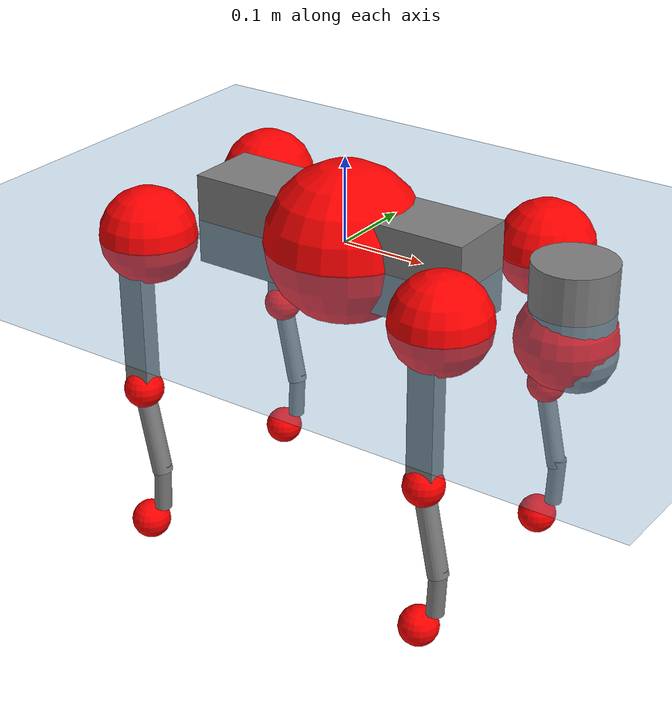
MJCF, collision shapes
<mujoco model="go2">
  <compiler angle="radian" assetdir="assets" balanceinertia="true" inertiafromgeom="false"/>

  <option timestep="0.005" density="1.2" viscosity="2e-05"/>

  <size nkey="1"/>

  <visual>
    <quality shadowsize="8192"/>
    <map shadowclip="0.5"/>
  </visual>

  <default>
    <default class="/">
      <geom contype="0" conaffinity="0" group="1" solref="-1000 -80"/>
      <site size="0.01 0.005 0.005" group="5"/>
      <general forcelimited="true" biastype="affine" gainprm="20" biasprm="0 -20 -0.5"/>
      <default class="go2">
        <joint armature="0.01" damping="0.01" frictionloss="0.2"/>
        <geom condim="1" margin="0.001"/>
        <default class="visual">
          <geom type="mesh" group="2"/>
        </default>
        <default class="collision">
          <geom group="3"/>
          <default class="foot">
            <geom size="0.022 0 0" condim="6" priority="1" friction="0.8 0.02 0.01" solimp="0.015 1 0.022"/>
          </default>
        </default>
        <default class="reward_collision_sphere">
          <geom group="5" rgba="1 0 0 1"/>
        </default>
      </default>
    </default>
  </default>

  <asset>
    <texture type="skybox" colorspace="auto" name="//unnamed_texture_0" builtin="gradient" rgb1="0.95 0.95 0.95" rgb2="0.95 0.95 0.95" width="100" height="600"/>
    <texture type="2d" colorspace="auto" name="texplane" builtin="checker" rgb1="0.345 0.575 0.748" rgb2="0.345 0.575 0.748" markrgb="1 1 1" width="512" height="512"/>
    <material name="MatPlane" class="/" texture="texplane" texuniform="true" texrepeat="2 2" specular="0.9"/>
    <material name="metal" class="/" rgba="0.9 0.95 0.95 1"/>
    <material name="black" class="/" rgba="0 0 0 1"/>
    <material name="white" class="/"/>
    <material name="gray" class="/" rgba="0.671705 0.692426 0.77427 1"/>
    <mesh name="base_0" class="/" file="base_0.obj"/>
    <mesh name="base_1" class="/" file="base_1.obj"/>
    <mesh name="base_2" class="/" file="base_2.obj"/>
    <mesh name="base_3" class="/" file="base_3.obj"/>
    <mesh name="base_4" class="/" file="base_4.obj"/>
    <mesh name="hip_0" class="/" file="hip_0.obj"/>
    <mesh name="hip_1" class="/" file="hip_1.obj"/>
    <mesh name="thigh_0" class="/" file="thigh_0.obj"/>
    <mesh name="thigh_1" class="/" file="thigh_1.obj"/>
    <mesh name="thigh_mirror_0" class="/" file="thigh_mirror_0.obj"/>
    <mesh name="thigh_mirror_1" class="/" file="thigh_mirror_1.obj"/>
    <mesh name="calf_0" class="/" file="calf_0.obj"/>
    <mesh name="calf_1" class="/" file="calf_1.obj"/>
    <mesh name="calf_mirror_0" class="/" file="calf_mirror_0.obj"/>
    <mesh name="calf_mirror_1" class="/" file="calf_mirror_1.obj"/>
    <mesh name="foot" class="/" file="foot.obj"/>
  </asset>

  <worldbody>
    <geom name="floor" class="/" size="100 100 0.125" type="plane" group="0" material="MatPlane"/>
    <light name="toplight_shadow" class="/" pos="0 0 5" dir="0.0990148 0.0990148 -0.990148" type="directional" ambient="0.04 0.04 0.04" diffuse="0.55 0.55 0.55" specular="0.12 0.12 0.12"/>
    <light name="toplight_fill" class="/" pos="0 0 5" dir="0.0990148 0.0990148 -0.990148" type="directional" castshadow="false" ambient="0.04 0.04 0.04" diffuse="0.3 0.3 0.3" specular="0.08 0.08 0.08"/>
    <body name="trunk" childclass="go2" pos="0.000903291 0.000292357 0.000758296" quat="1 0.000138606 3.55172e-05 -0.000117223">
      <inertial pos="0.0200986 -0.000959537 -0.00472359" quat="-0.000581111 0.711779 -0.00125877 0.702402" mass="5.38555" diaginertia="0.100704 0.0729358 0.0103952"/>
      <joint name="//unnamed_joint_0" type="free" armature="0" damping="0" frictionloss="0"/>
      <geom name="//unnamed_geom_1" class="visual" material="black" mesh="base_0"/>
      <geom name="//unnamed_geom_2" class="visual" material="black" mesh="base_1"/>
      <geom name="//unnamed_geom_3" class="visual" material="black" mesh="base_2"/>
      <geom name="//unnamed_geom_4" class="visual" material="white" mesh="base_3"/>
      <geom name="//unnamed_geom_5" class="visual" material="gray" mesh="base_4"/>
      <geom name="trunk_1" class="collision" size="0.174057 0.0432599 0.0527447" type="box"/>
      <geom name="trunk_2" class="collision" size="0.0462672 0.0416405" pos="0.281799 0 0.00843873" type="cylinder"/>
      <geom name="trunk_3" class="collision" size="0.0434912" pos="0.289709 0 -0.0506324"/>
      <geom name="//unnamed_geom_9" class="reward_collision_sphere" size="0.0925345"/>
      <geom name="//unnamed_geom_10" class="reward_collision_sphere" size="0.0555207" pos="0.276855 0 -0.0379743"/>
      <site name="imu" pos="-0.0241486 -0.00443911 0.0367249" size="0.00925345"/>
      <camera name="track" pos="0 -1.88678 0" quat="0.707107 0.707107 0 0" mode="trackcom"/>
      <camera name="ego_camera" pos="0.308496 0 0.0379743" quat="-0.5 -0.5 0.5 0.5"/>
      <body name="FL_hip" pos="0.190479 0.0434052 0.00119322" quat="1 0.000272701 -0.000213361 -4.27393e-05">
        <inertial pos="-0.00483987 0.00271637 -0.000680359" quat="0.49672 0.499476 0.505397 0.498364" mass="0.545495" diaginertia="0.000850298 0.000443203 0.000205336"/>
        <joint name="FL_hip_joint" pos="0 0 0" axis="0.999944 0.0013145 0.0104764" stiffness="0.00506749" range="-1.03405 1.04797" armature="0.00920808" damping="0" frictionloss="0.184567"/>
        <geom name="//unnamed_geom_11" class="visual" material="metal" mesh="hip_0"/>
        <geom name="//unnamed_geom_12" class="visual" material="gray" mesh="hip_1"/>
        <geom name="//unnamed_geom_13" class="collision" size="0.0425659 0.0185069" pos="0 0.0754714 0" quat="0.707107 0.707107 0 0" type="cylinder"/>
        <geom name="//unnamed_geom_14" class="reward_collision_sphere" size="0.0555207" pos="0 0.0660375 0"/>
        <body name="FL_thigh" pos="-0.00119255 0.0902594 0.00151774" quat="1 0.000102585 1.14279e-05 8.12796e-05">
          <inertial pos="-0.0045794 -0.0200403 -0.0277337" quat="0.829446 0.0848202 -0.0200809 0.551745" mass="0.923685" diaginertia="0.005611 0.00438476 0.000384057"/>
          <joint name="FL_thigh_joint" pos="0 0 0" axis="0.00382929 0.999988 -0.00310481" range="-1.58468 3.49328" armature="0.00937227" damping="0.00595383" frictionloss="0.187066"/>
          <geom name="//unnamed_geom_15" class="visual" material="metal" mesh="thigh_0"/>
          <geom name="//unnamed_geom_16" class="visual" material="gray" mesh="thigh_1"/>
          <geom name="//unnamed_geom_17" class="collision" size="0.0985492 0.0113355 0.0157309" pos="0 0 -0.0898725" quat="0.707107 0 0.707107 0" type="box"/>
          <body name="FL_calf" pos="-0.000379966 -0.0012482 -0.18013" quat="1 -0.000206888 0.000280829 0.000280264">
            <inertial pos="0.00657922 -0.000346932 -0.119553" quat="0.709324 0.00167563 -0.00356996 0.704872" mass="0.191387" diaginertia="0.00144236 0.00109583 2.30611e-05"/>
            <joint name="FL_calf_joint" pos="0 0 0" axis="-0.00207551 0.999997 0.00118665" range="-2.73196 -0.842247" armature="0.00889716" damping="0.00333201" frictionloss="0.177132"/>
            <geom name="//unnamed_geom_18" class="visual" material="gray" mesh="calf_0"/>
            <geom name="//unnamed_geom_19" class="visual" material="black" mesh="calf_1"/>
            <geom name="FL_calf0" class="collision" size="0.0111041 0.0555207" pos="0.00791016 0 -0.0506324" quat="0.994493 0 -0.104807 0" type="cylinder"/>
            <geom name="//unnamed_geom_21" class="collision" size="0.0101788 0.0300737" pos="0.0197754 0 -0.124893" quat="0.999688 0 0.0249974 0" type="cylinder"/>
            <geom name="//unnamed_geom_22" class="visual" pos="0 0 -0.179745" quat="1 0 0 0" material="black" mesh="foot"/>
            <geom name="FL_foot" class="foot" size="0.0168181" pos="-0.00197754 0 -0.179745"/>
            <geom name="//unnamed_geom_24" class="reward_collision_sphere" size="0.0231336"/>
            <geom name="//unnamed_geom_25" class="reward_collision_sphere" size="0.0231336" pos="-0.00197754 0 -0.179745"/>
            <site name="FL_foot" class="foot" pos="-0.00197754 0 -0.179745" size="0.00925345"/>
          </body>
        </body>
      </body>
      <body name="FR_hip" pos="0.192307 -0.0432293 -0.000572181" quat="1 -5.46208e-05 0.000172447 -0.000194088">
        <inertial pos="-0.00605753 -0.0017474 -0.000279" quat="0.49767 0.505577 0.498859 0.49785" mass="0.538652" diaginertia="0.000850962 0.000450605 0.0002099"/>
        <joint name="FR_hip_joint" pos="0 0 0" axis="0.999998 -0.00138067 0.00118482" stiffness="0.00442347" range="-1.05382 1.04932" armature="0.00931422" damping="0.0136927" frictionloss="0.186494"/>
        <geom name="//unnamed_geom_26" class="visual" pos="0 8.66974e-10 3.71863e-08" quat="4.63268e-05 1 0 0" material="metal" mesh="hip_0"/>
        <geom name="//unnamed_geom_27" class="visual" pos="0 1.40547e-09 -9.1976e-08" quat="4.63268e-05 1 0 0" material="gray" mesh="hip_1"/>
        <geom name="//unnamed_geom_28" class="collision" size="0.0425659 0.0185069" pos="0 -0.0754714 0" quat="0.707107 0.707107 0 0" type="cylinder"/>
        <geom name="//unnamed_geom_29" class="reward_collision_sphere" size="0.0555207" pos="0 -0.0660375 0"/>
        <body name="FR_thigh" pos="0.000470066 -0.0912848 0.00117277" quat="1 -0.00013644 6.89204e-05 7.29141e-05">
          <inertial pos="-0.00456859 0.0216443 -0.0272957" quat="0.553952 -0.0180294 0.0822391 0.828281" mass="0.911705" diaginertia="0.00569008 0.00441076 0.000378705"/>
          <joint name="FR_thigh_joint" pos="0 0 0" axis="0.00245851 -0.999992 -0.00305078" stiffness="0.00248423" range="-3.49712 1.56252" armature="0.00926258" damping="0.0112891" frictionloss="0.178994"/>
          <geom name="//unnamed_geom_30" class="visual" material="metal" mesh="thigh_mirror_0"/>
          <geom name="//unnamed_geom_31" class="visual" material="gray" mesh="thigh_mirror_1"/>
          <geom name="//unnamed_geom_32" class="collision" size="0.0985492 0.0113355 0.0157309" pos="0 0 -0.0898725" quat="0.707107 0 0.707107 0" type="box"/>
          <body name="FR_calf" pos="-1.00657e-05 -0.000401033 -0.178719" quat="1 -3.68774e-07 -3.43124e-07 -7.26218e-06">
            <inertial pos="0.00633937 0.000450697 -0.119345" quat="0.703745 -0.00504154 0.00136899 0.710433" mass="0.191656" diaginertia="0.00140621 0.00109312 2.29139e-05"/>
            <joint name="FR_calf_joint" pos="0 0 0" axis="0.000933867 -0.999996 0.00257387" range="0.831059 2.70873" armature="0.00934101" damping="0.00625679" frictionloss="0.189827"/>
            <geom name="//unnamed_geom_33" class="visual" material="gray" mesh="calf_mirror_0"/>
            <geom name="//unnamed_geom_34" class="visual" material="black" mesh="calf_mirror_1"/>
            <geom name="FR_calf0" class="collision" size="0.0120295 0.0555207" pos="0.0098877 0 -0.0506324" quat="0.995004 0 -0.0998334 0" type="cylinder"/>
            <geom name="//unnamed_geom_36" class="collision" size="0.0101788 0.0300737" pos="0.0197754 0 -0.124893" quat="0.999688 0 0.0249974 0" type="cylinder"/>
            <geom name="//unnamed_geom_37" class="visual" pos="0 0 -0.179745" quat="1 0 0 0" material="black" mesh="foot"/>
            <geom name="FR_foot" class="foot" size="0.0226395" pos="-0.00197754 0 -0.179745"/>
            <geom name="//unnamed_geom_39" class="reward_collision_sphere" size="0.0231336"/>
            <geom name="//unnamed_geom_40" class="reward_collision_sphere" size="0.0231336" pos="-0.00197754 0 -0.179745"/>
            <site name="FR_foot" class="foot" pos="-0.00197754 0 -0.179745" size="0.00925345"/>
          </body>
        </body>
      </body>
      <body name="RL_hip" pos="-0.190931 0.0435355 0.000233592" quat="1 2.91734e-05 2.76883e-05 0.00013004">
        <inertial pos="0.00508312 0.00279744 0.000662626" quat="0.503 0.50083 0.49957 0.496578" mass="0.543649" diaginertia="0.000838707 0.000447855 0.000207271"/>
        <joint name="RL_hip_joint" pos="0 0 0" axis="-0.999804 0.0104721 -0.0167837" range="-1.0508 1.06441" armature="0.00937826" damping="0.0166404" frictionloss="0.186014"/>
        <geom name="//unnamed_geom_41" class="visual" pos="-1.26228e-09 0 -2.47436e-07" quat="4.63268e-05 0 1 0" material="metal" mesh="hip_0"/>
        <geom name="//unnamed_geom_42" class="visual" pos="-2.04631e-09 0 -2.19441e-07" quat="4.63268e-05 0 1 0" material="gray" mesh="hip_1"/>
        <geom name="//unnamed_geom_43" class="collision" size="0.0425659 0.0185069" pos="0 0.0754714 0" quat="0.707107 0.707107 0 0" type="cylinder"/>
        <geom name="//unnamed_geom_44" class="reward_collision_sphere" size="0.0555207" pos="0 0.0660375 0"/>
        <body name="RL_thigh" pos="-0.000185575 0.0898671 -0.00025164" quat="1 -5.03184e-05 4.12464e-05 -5.47482e-05">
          <inertial pos="-0.00359618 -0.0206017 -0.0272125" quat="0.829305 0.0840933 -0.0192521 0.552097" mass="0.922557" diaginertia="0.00562552 0.00440337 0.000373407"/>
          <joint name="RL_thigh_joint" pos="0 0 0" axis="0.00111421 0.999997 -0.00215062" range="-0.527238 4.53765" armature="0.00897092" damping="0.0126151" frictionloss="0.185719"/>
          <geom name="//unnamed_geom_45" class="visual" material="metal" mesh="thigh_0"/>
          <geom name="//unnamed_geom_46" class="visual" material="gray" mesh="thigh_1"/>
          <geom name="//unnamed_geom_47" class="collision" size="0.0985492 0.0113355 0.0157309" pos="0 0 -0.0898725" quat="0.707107 0 0.707107 0" type="box"/>
          <body name="RL_calf" pos="0.000213109 -0.0010332 -0.180433" quat="1 -0.000137902 0.000263199 0.000154957">
            <inertial pos="0.00639777 0.000336492 -0.11949" quat="0.710016 0.00560644 -0.00574285 0.70414" mass="0.190943" diaginertia="0.00142206 0.00108804 2.24824e-05"/>
            <joint name="RL_calf_joint" pos="0 0 0" axis="-0.00933066 0.999956 -0.000130136" range="-2.72244 -0.850127" armature="0.00886029" damping="0.00737897" frictionloss="0.191283"/>
            <geom name="//unnamed_geom_48" class="visual" material="gray" mesh="calf_0"/>
            <geom name="//unnamed_geom_49" class="visual" material="black" mesh="calf_1"/>
            <geom name="RL_calf0" class="collision" size="0.0120295 0.0555207" pos="0.0098877 0 -0.0506324" quat="0.995004 0 -0.0998334 0" type="cylinder"/>
            <geom name="//unnamed_geom_51" class="collision" size="0.0101788 0.0300737" pos="0.0197754 0 -0.124893" quat="0.999688 0 0.0249974 0" type="cylinder"/>
            <geom name="//unnamed_geom_52" class="visual" pos="0 0 -0.179745" quat="1 0 0 0" material="black" mesh="foot"/>
            <geom name="RL_foot" class="foot" size="0.0175458" pos="-0.00197754 0 -0.179745"/>
            <geom name="//unnamed_geom_54" class="reward_collision_sphere" size="0.0231336"/>
            <geom name="//unnamed_geom_55" class="reward_collision_sphere" size="0.0231336" pos="-0.00197754 0 -0.179745"/>
            <site name="RL_foot" class="foot" pos="-0.00197754 0 -0.179745" size="0.00925345"/>
          </body>
        </body>
      </body>
      <body name="RR_hip" pos="-0.191488 -0.0433865 -0.000376799" quat="1 0.000407538 9.38907e-05 -0.000214336">
        <inertial pos="0.00578534 -0.00248701 -0.000450644" quat="0.501123 0.494415 0.497314 0.507059" mass="0.536085" diaginertia="0.000832806 0.000445508 0.000205678"/>
        <joint name="RR_hip_joint" pos="0 0 0" axis="-0.999988 -0.00473366 0.00148268" range="-1.05461 1.05394" armature="0.00961541" damping="0.0068918" frictionloss="0.189476"/>
        <geom name="//unnamed_geom_56" class="visual" pos="1.26071e-09 8.66974e-10 -2.84622e-07" quat="2.14617e-09 4.63268e-05 4.63268e-05 -1" material="metal" mesh="hip_0"/>
        <geom name="//unnamed_geom_57" class="visual" pos="2.05019e-09 1.40547e-09 -1.27465e-07" quat="2.14617e-09 4.63268e-05 4.63268e-05 -1" material="gray" mesh="hip_1"/>
        <geom name="//unnamed_geom_58" class="collision" size="0.0425659 0.0185069" pos="0 -0.0754714 0" quat="0.707107 0.707107 0 0" type="cylinder"/>
        <geom name="//unnamed_geom_59" class="reward_collision_sphere" size="0.0555207" pos="0 -0.0660375 0"/>
        <body name="RR_thigh" pos="-0.000143526 -0.0905541 -0.00249636" quat="1 1.694e-05 2.35166e-05 -2.91419e-06">
          <inertial pos="-0.00384732 0.0211065 -0.0277102" quat="0.551657 -0.0207263 0.0854606 0.829423" mass="0.913703" diaginertia="0.00559106 0.00431795 0.000375244"/>
          <joint name="RR_thigh_joint" pos="0 0 0" axis="0.00447896 -0.99999 0.000965606" range="-4.53672 0.524099" armature="0.00928497" damping="0.0138989" frictionloss="0.18956"/>
          <geom name="//unnamed_geom_60" class="visual" material="metal" mesh="thigh_mirror_0"/>
          <geom name="//unnamed_geom_61" class="visual" material="gray" mesh="thigh_mirror_1"/>
          <geom name="//unnamed_geom_62" class="collision" size="0.0985492 0.0113355 0.0157309" pos="0 0 -0.0898725" quat="0.707107 0 0.707107 0" type="box"/>
          <body name="RR_calf" pos="0.000923548 -9.14172e-05 -0.180977" quat="1 0.000186653 -0.000113086 5.75779e-05">
            <inertial pos="0.00667578 0.000881301 -0.119634" quat="0.703382 -0.000316295 0.00297602 0.710806" mass="0.192014" diaginertia="0.00140273 0.00109487 2.26673e-05"/>
            <joint name="RR_calf_joint" pos="0 0 0" axis="-0.00381209 -0.999988 0.00306934" range="0.832246 2.72454" armature="0.00911435" damping="0.0100791" frictionloss="0.182719"/>
            <geom name="//unnamed_geom_63" class="visual" material="gray" mesh="calf_mirror_0"/>
            <geom name="//unnamed_geom_64" class="visual" material="black" mesh="calf_mirror_1"/>
            <geom name="RR_calf0" class="collision" size="0.0120295 0.0555207" pos="0.0098877 0 -0.0506324" quat="0.995004 0 -0.0998334 0" type="cylinder"/>
            <geom name="//unnamed_geom_66" class="collision" size="0.0101788 0.0300737" pos="0.0197754 0 -0.124893" quat="0.999688 0 0.0249974 0" type="cylinder"/>
            <geom name="//unnamed_geom_67" class="visual" pos="0 0 -0.179745" quat="1 0 0 0" material="black" mesh="foot"/>
            <geom name="RR_foot" class="foot" size="0.0217113" pos="-0.00197754 0 -0.179745"/>
            <geom name="//unnamed_geom_69" class="reward_collision_sphere" size="0.0231336"/>
            <geom name="//unnamed_geom_70" class="reward_collision_sphere" size="0.0231336" pos="-0.00197754 0 -0.179745"/>
            <site name="RR_foot" class="foot" pos="-0.00197754 0 -0.179745" size="0.00925345"/>
          </body>
        </body>
      </body>
    </body>
  </worldbody>

  <contact>
    <pair class="/" geom1="floor" geom2="FL_foot" name="//unnamed_contact_0"/>
    <pair class="/" geom1="floor" geom2="FR_foot" name="//unnamed_contact_1"/>
    <pair class="/" geom1="floor" geom2="RL_foot" name="//unnamed_contact_2"/>
    <pair class="/" geom1="floor" geom2="RR_foot" name="//unnamed_contact_3"/>
  </contact>

  <actuator>
    <general name="FL_hip" class="/" joint="FL_hip_joint" forcerange="-21.8198 21.8198" gainprm="18.1718" biasprm="0 -18.1718 -0.469783"/>
    <general name="FL_thigh" class="/" joint="FL_thigh_joint" forcerange="-22.6631 22.6631" gainprm="18.1718" biasprm="0 -18.1718 -0.469783"/>
    <general name="FL_calf" class="/" joint="FL_calf_joint" forcerange="-41.3978 41.3978" gainprm="18.1718" biasprm="0 -18.1718 -0.469783"/>
    <general name="FR_hip" class="/" joint="FR_hip_joint" forcerange="-21.9364 21.9364" gainprm="18.1718" biasprm="0 -18.1718 -0.469783"/>
    <general name="FR_thigh" class="/" joint="FR_thigh_joint" forcerange="-21.1698 21.1698" gainprm="18.1718" biasprm="0 -18.1718 -0.469783"/>
    <general name="FR_calf" class="/" joint="FR_calf_joint" forcerange="-41.5302 41.5302" gainprm="18.1718" biasprm="0 -18.1718 -0.469783"/>
    <general name="RL_hip" class="/" joint="RL_hip_joint" forcerange="-22.4761 22.4761" gainprm="18.1718" biasprm="0 -18.1718 -0.469783"/>
    <general name="RL_thigh" class="/" joint="RL_thigh_joint" forcerange="-22.5638 22.5638" gainprm="18.1718" biasprm="0 -18.1718 -0.469783"/>
    <general name="RL_calf" class="/" joint="RL_calf_joint" forcerange="-41.3569 41.3569" gainprm="18.1718" biasprm="0 -18.1718 -0.469783"/>
    <general name="RR_hip" class="/" joint="RR_hip_joint" forcerange="-22.5653 22.5653" gainprm="18.1718" biasprm="0 -18.1718 -0.469783"/>
    <general name="RR_thigh" class="/" joint="RR_thigh_joint" forcerange="-22.2373 22.2373" gainprm="18.1718" biasprm="0 -18.1718 -0.469783"/>
    <general name="RR_calf" class="/" joint="RR_calf_joint" forcerange="-43.0652 43.0652" gainprm="18.1718" biasprm="0 -18.1718 -0.469783"/>
  </actuator>

  <sensor>
    <gyro site="imu" name="imu_angular_velocity"/>
    <velocimeter site="imu" name="imu_linear_velocity"/>
    <framelinvel objtype="site" objname="FL_foot" name="FL_foot_global_linear_velocity"/>
    <framelinvel objtype="site" objname="FR_foot" name="FR_foot_global_linear_velocity"/>
    <framelinvel objtype="site" objname="RL_foot" name="RL_foot_global_linear_velocity"/>
    <framelinvel objtype="site" objname="RR_foot" name="RR_foot_global_linear_velocity"/>
  </sensor>

  <keyframe>
    <key name="home" qpos="0 0 0.325 1 0 0 0 0.1 0.8 -1.5 -0.1 -0.8 1.5 -0.1 0.8 -1.5 0.1 -0.8 1.5"/>
  </keyframe>
</mujoco>
